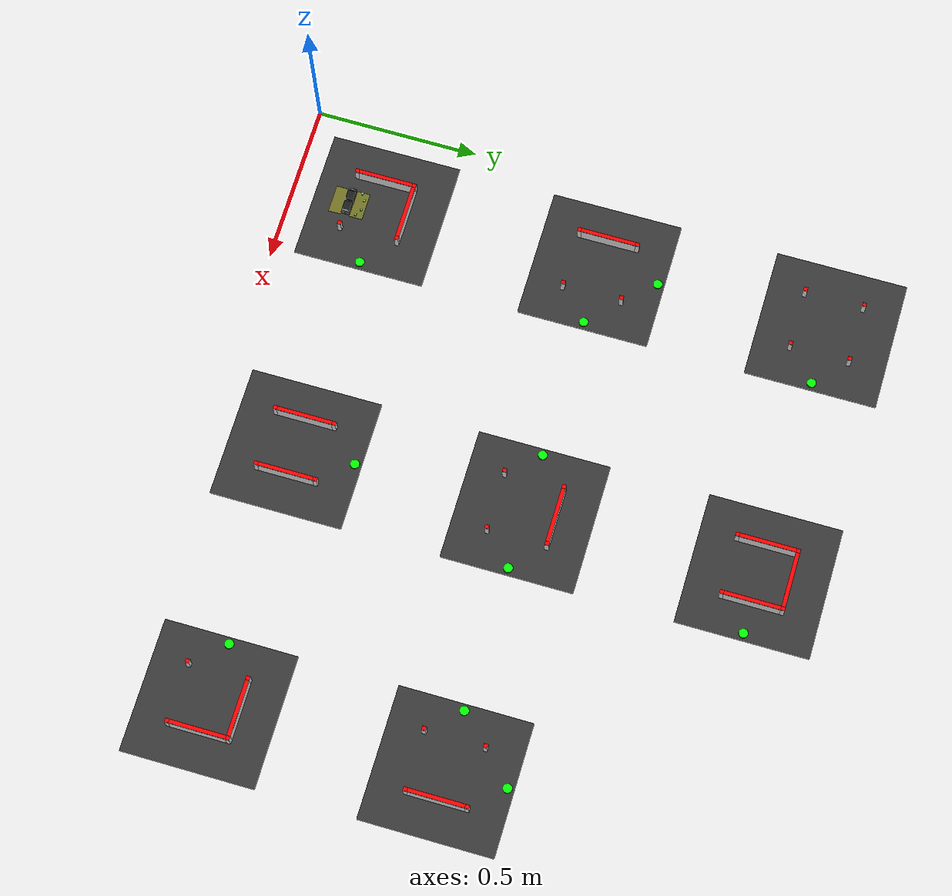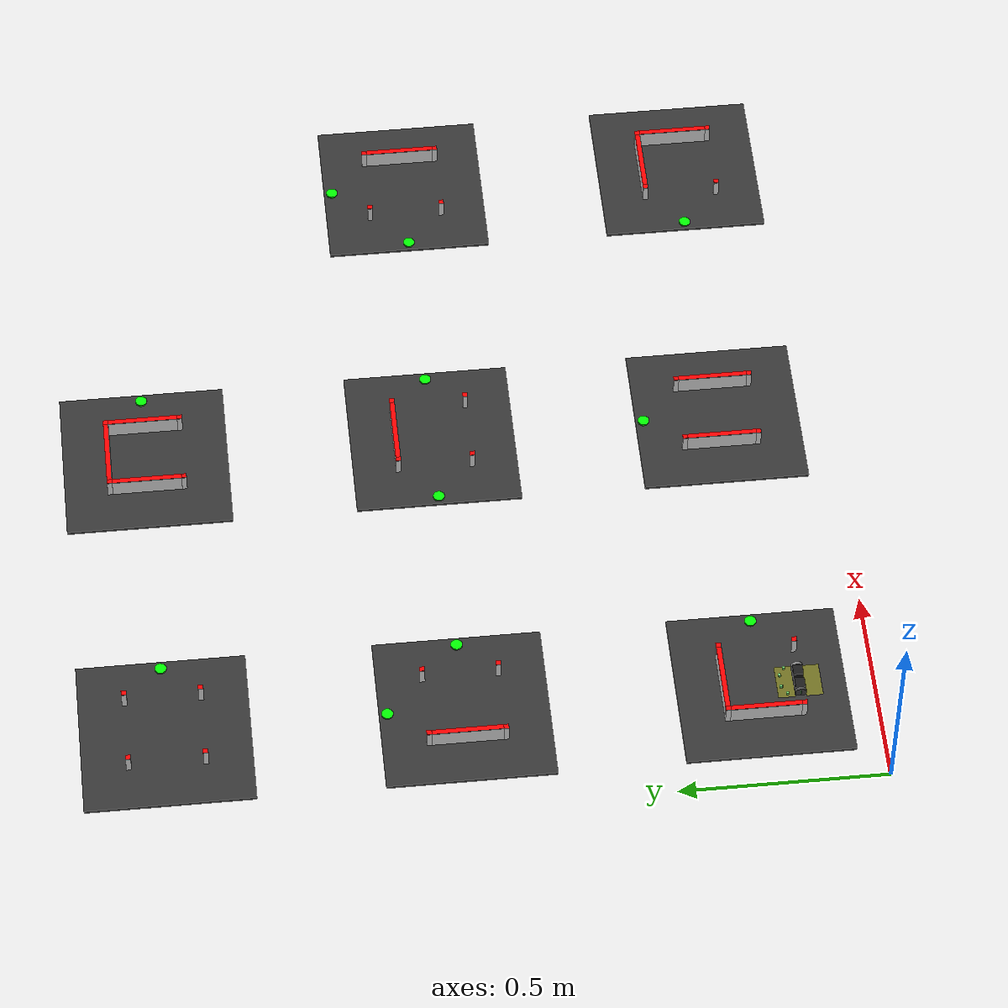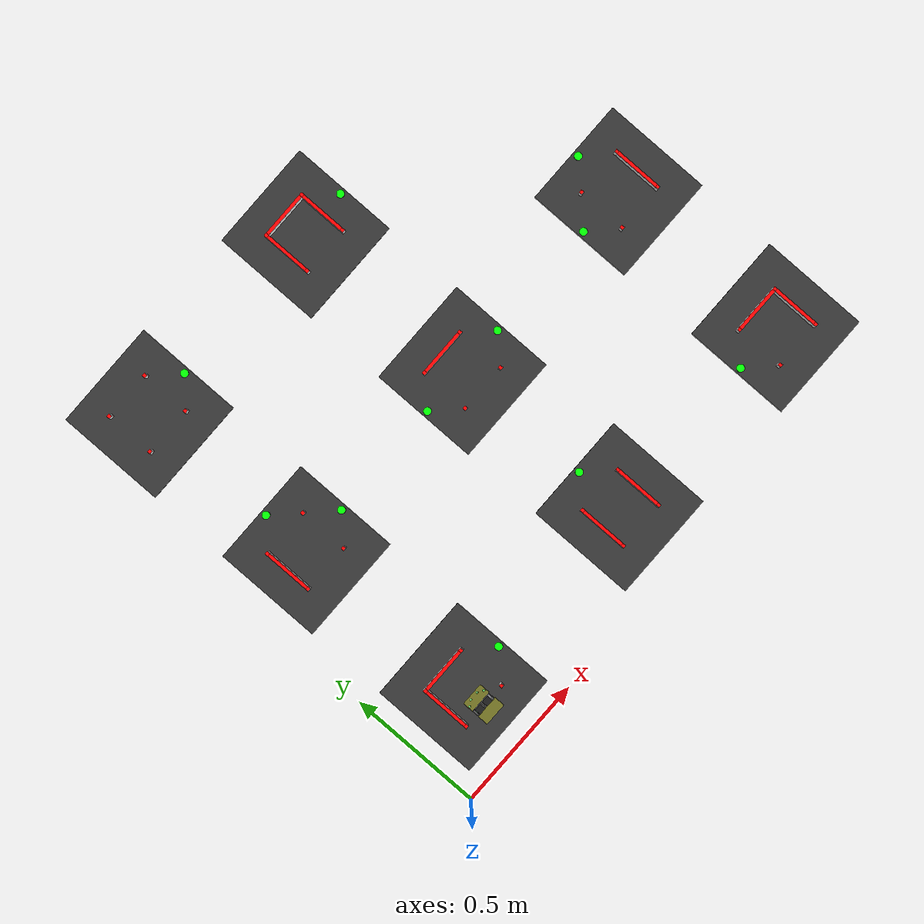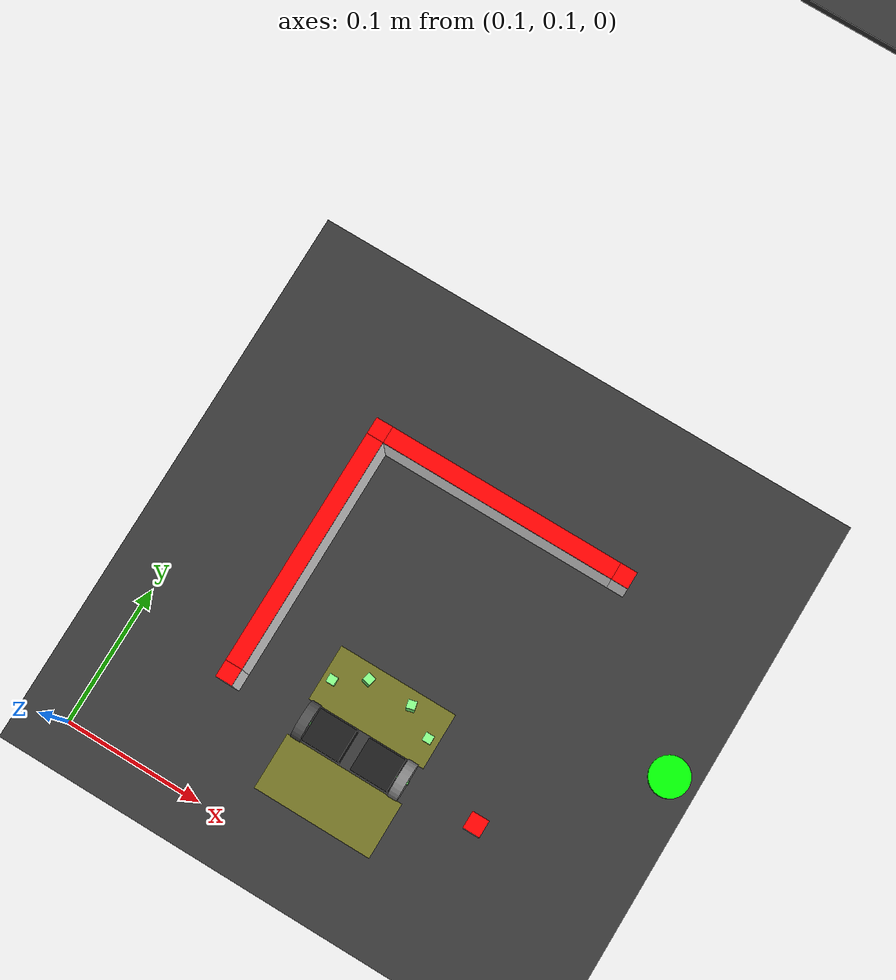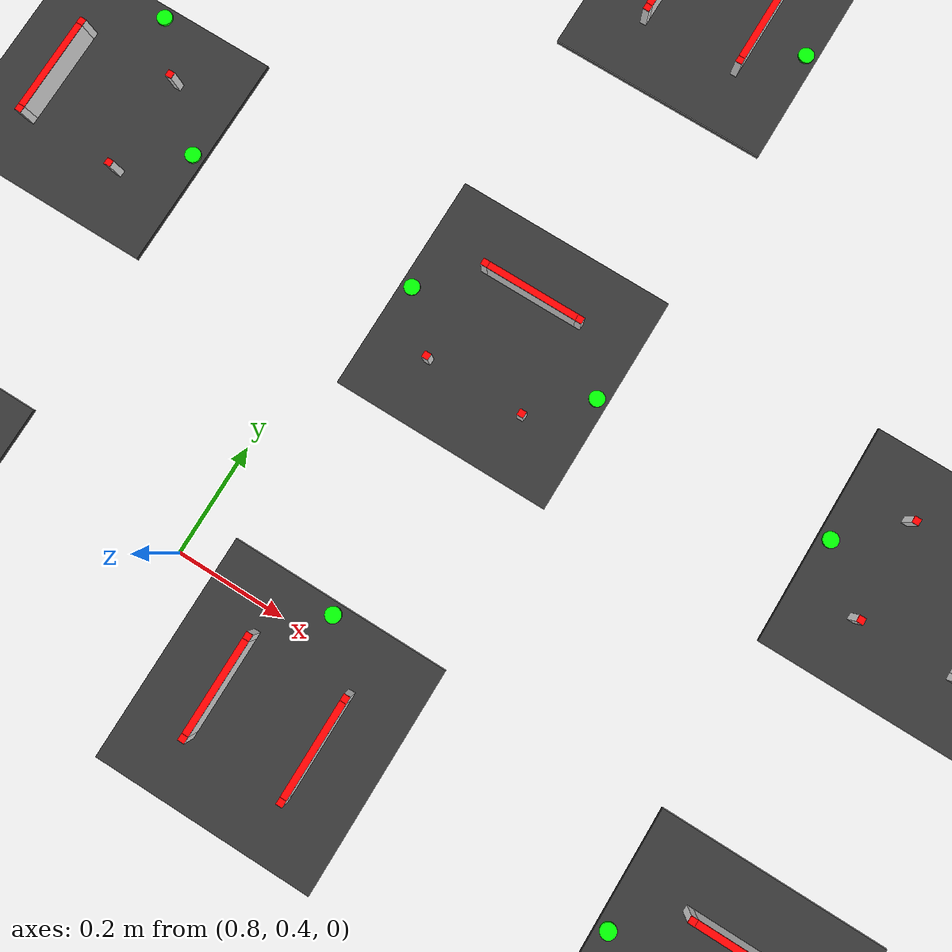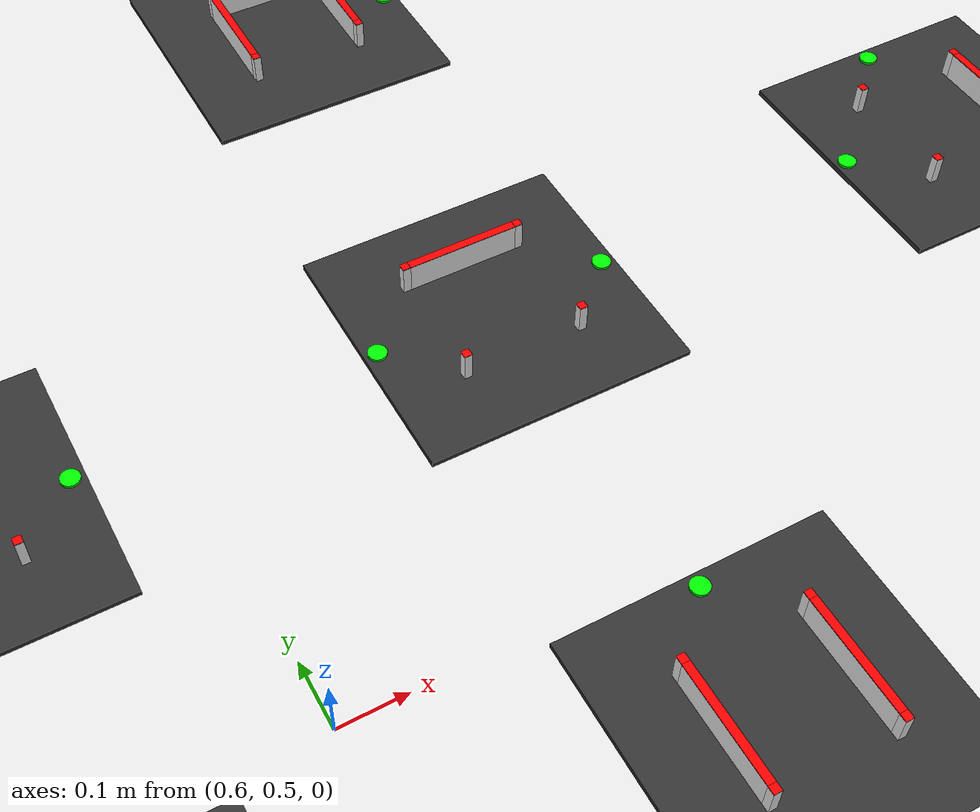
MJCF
<mujoco>
<compiler angle="degree" coordinate="local" inertiafromgeom="true" />
    <option integrator="RK4" timestep="0.001" />
    <visual>
   <quality shadowsize="0" />
</visual>

    <include file="./body_mouse_mas_rand_training.xml"/>
    <include file="./course_mouse_mas_rand_training.xml"/>

</mujoco>

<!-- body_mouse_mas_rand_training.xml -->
<mujoco model="micromouse">
<option>
    </option>
    <worldbody>
        <light diffuse=".5 .5 .5" pos="0 0 10" dir="0 0 -1"/>

         <body pos="0.27 0.18 0.0135" euler="0 0 90">
            <freejoint />
            <body name="torso">
                <geom name="mein_body1" type="box" friction="0.0 0.0 0.0" size="0.05 0.03 0.0008" rgba="0.05 0.4 0.15 1" pos="0 0 0.002" mass="4.65e-3"/>
                <geom name="mein_body_chip1" type="box" friction="0.0 0.0 0.0" size="0.00707 0.00707 0.0008" rgba="0.05 0.4 0.15 1" pos="0.04 0.03 0.002" euler="0 0 45" mass="4.65e-3"/>
                <geom name="mein_body_chip2" type="box" friction="0.0 0.0 0.0" size="0.00707 0.00707 0.0008" rgba="0.05 0.4 0.15 1" pos="0.04 -0.03 0.002" euler="0 0 45" mass="4.65e-3"/>
                <geom name="mein_body_chip3" type="box" friction="0.0 0.0 0.0" size="0.00707 0.00707 0.0008" rgba="0.05 0.4 0.15 1" pos="-0.04 0.03 0.002" euler="0 0 45" mass="4.65e-3"/>
                <geom name="mein_body_chip4" type="box" friction="0.0 0.0 0.0" size="0.00707 0.00707 0.0008" rgba="0.05 0.4 0.15 1" pos="-0.04 -0.03 0.002" euler="0 0 45" mass="4.65e-3"/>
                <geom name="mein_body4" type="box" friction="0.0 0.0 0.0" size="0.013 0.04 0.0008"  rgba="0.05 0.4 0.15 1" pos="-0.027 0 0.002" mass="4.65e-3"/>
                <geom name="mein_body5" type="box" friction="0.0 0.0 0.0" size="0.013 0.04 0.0008"  rgba="0.05 0.4 0.15 1" pos="0.027 0 0.002" mass="4.65e-3"/>
                <!--接触判定領域（この中に入ってるgeomが接触すると，センサ値としてその値を取得できる）-->
                <site name = "hit_box1" type = "box" size = "0.02 0.043 0.00078" pos="0.033 0 0.003" rgba="1 1 0 0.3"/>
                <site name = "hit_box2" type = "box" size = "0.02 0.043 0.00078" pos="-0.033 0 0.003" rgba="1 1 0 0.3"/>
            </body>

            <site name="sensor_left_front" type="box" size="0.003 0.003 0.003" pos="0.031 0.036 0.01" zaxis="1 0 0.01" rgba=".5 1 .5 1"/>
              <!-- zaxisの３つめ　0.1でちょい上向き -->
            <site name="sensor_left_side" type="box" size="0.003 0.003 0.003" pos="0.043 0.016 0.01" zaxis="0.25 1 0" rgba=".5 1 .5 1"/>
            <site name="sensor_right_front" type="box" size="0.003 0.003 0.003" pos="0.031 -0.036 0.01" zaxis="1 0 0.01" rgba=".5 1 .5 1"/>
            <site name="sensor_right_side" type="box" size="0.003 0.003 0.003" pos="0.043 -0.016 0.01" zaxis="0.25 -1 0" rgba=".5 1 .5 1"/>
            <site name="accerometer" type="sphere" size="0.001 0.001" pos="0 0 0.0"/>
            <site name="gyro" type="box" size="0.001 0.001 0.001" pos="0 0 0" />
            <site name="velocimeter" type="box" size="0.001 0.001 0.001" pos="0 0 0"/>

             <body name="left wheel" pos="-0.0 0.036 0.0135" zaxis="0 1 0">
                <joint name="left wheel joint" type="hinge" axis="0 0 1" limited="false" damping='9.6e-5' />
                <geom name="left_wheel" type="cylinder" size="0.0135 0.0035" friction="1.0 0 0"  rgba=".3 .3 0.3 1" mass="5e-3"/>
                <site type="box" size = "0.0012 0.008 0.004" rgba=".5 1 .5 1"/>
            </body>

            <body name="right wheel" pos="-0.0 -0.036 0.0135" zaxis="0 1 0">
                <joint name="right wheel joint" type="hinge" axis="0 0 1" limited="false" damping='9.6e-5' />
                <geom type="cylinder" size="0.0135 0.0035" friction="1.0 0 0" mass="5e-3"/> #直径27mmのタイヤ
                <site type="box" size = "0.0012 0.008 0.004" rgba=".5 1 .5 1"/>
            </body>

            <body name="motorbox1" pos="0 -0.018 0.0135" >
                <geom type="box" size="0.0117 0.0135 0.0117" rgba="0.1 0.1 0.1 1" mass="50e-3"/>
            </body>

            <body name="motorbox2" pos="0 0.018 0.0135">
                <geom type="box" size="0.0117 0.0135 0.0117" rgba="0.1 0.1 0.1 1" mass="50e-3"/>
            </body>

            <!--トラッキングカメラを装着-->
            <camera name="camera_name" mode="track" pos="-0.4 0 0.8" euler="0 -30 -90" fovy="60"/>

        </body>
    </worldbody>

    <actuator>
        <motor name="right" joint="right wheel joint" gear="9.0e-3" ctrllimited="true" ctrlrange="-0.2 0.2"/> ctrlrangeで入力の値の範囲を決められる
        <motor name="left"  joint="left wheel joint"  gear="9.0e-3" ctrllimited="true" ctrlrange="-0.2 0.2"/>
    </actuator>

    <sensor>
        <rangefinder name="LF" site="sensor_left_front" cutoff="0.3"/>
        <rangefinder name="LS" site="sensor_left_side" cutoff="0.3"/>
        <rangefinder name="RF" site="sensor_right_front" cutoff="0.3"/>
        <rangefinder name="RS" site="sensor_right_side" cutoff="0.3"/>
        <touch name = "HB1" site = "hit_box1"/>
        <touch name = "HB2" site = "hit_box2"/>
        <accelerometer name="Accel" site="accerometer"/>
        <gyro name="Gyro" site="gyro" noise="0.0001"/>
        <velocimeter name="Veloci" site="velocimeter"/>
    </sensor>

</mujoco>

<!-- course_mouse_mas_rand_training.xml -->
<mujoco model="maze">
<compiler angle="degree" coordinate="local" inertiafromgeom="true" />
    <option integrator="RK4" />
    <worldbody>
       <!-- ベース板 -->
        <body name="base_plate1" pos="0.27 0.27 0.013">
        <geom type="box" mass="0.1" size="0.20 0.20 0.004" rgba="0.2 0.2 0.2 1" friction="0.0 0.0 0.0"/>
        </body>

        <!-- Column 1-6-->
        <body pos="0.18 0.18 0.037">
            <body pos="0 0 -0.0005">
                <geom type="box" mass="0.01" size="0.006 0.006 0.0245" rgba="1 1 1 1"/>
            </body>
            <!--柱上赤蓋-->
            <body pos="0 0 0.0245">
                <geom type="box" mass="0.01" size="0.006 0.006 0.0005" rgba="1 0 0 1"/>
            </body>
        </body>
        <!-- Column 1-7-->
        <body pos="0.36 0.18 0.037">
            <body pos="0 0 -0.0005">
                <geom type="box" mass="0.01" size="0.006 0.006 0.0245" rgba="1 1 1 1"/>
            </body>
            <!--柱上赤蓋-->
            <body pos="0 0 0.0245">
                <geom type="box" mass="0.01" size="0.006 0.006 0.0005" rgba="1 0 0 1"/>
            </body>
        </body>
        <!-- Column 2-10-->
        <body pos="0.18 0.36 0.037">
            <body pos="0 0 -0.0005">
                <geom type="box" mass="0.01" size="0.006 0.006 0.0245" rgba="1 1 1 1"/>
            </body>
            <!--柱上赤蓋-->
            <body pos="0 0 0.0245">
                <geom type="box" mass="0.01" size="0.006 0.006 0.0005" rgba="1 0 0 1"/>
            </body>
        </body>
        <!-- Column 1-11-->
        <body pos="0.36 0.36 0.037">
            <body pos="0 0 -0.0005">
                <geom type="box" mass="0.01" size="0.006 0.006 0.0245" rgba="1 1 1 1"/>
            </body>
            <!--柱上赤蓋-->
            <body pos="0 0 0.0245">
                <geom type="box" mass="0.01" size="0.006 0.006 0.0005" rgba="1 0 0 1"/>
            </body>
        </body>

        <!--ベース板2-->
        <body name="base_plate2" pos="1.07 0.27 0.013">
        <geom type="box" mass="0.1" size="0.2 0.2 0.004" rgba="0.2 0.2 0.2 1" friction="0.0 0.0 0.0"/>
        </body>

        <!-- Column 2-6-->
        <body pos="0.98 0.18 0.037">
            <body pos="0 0 -0.0005">
                <geom type="box" mass="0.01" size="0.006 0.006 0.0245" rgba="1 1 1 1"/>
            </body>
            <!--柱上赤蓋-->
            <body pos="0 0 0.0245">
                <geom type="box" mass="0.01" size="0.006 0.006 0.0005" rgba="1 0 0 1"/>
            </body>
        </body>
        <!-- Column 2-7-->
        <body pos="1.16 0.18 0.037">
            <body pos="0 0 -0.0005">
                <geom type="box" mass="0.01" size="0.006 0.006 0.0245" rgba="1 1 1 1"/>
            </body>
            <!--柱上赤蓋-->
            <body pos="0 0 0.0245">
                <geom type="box" mass="0.01" size="0.006 0.006 0.0005" rgba="1 0 0 1"/>
            </body>
        </body>
        <!-- Column 2-10-->
        <body pos="0.98 0.36 0.037">
            <body pos="0 0 -0.0005">
                <geom type="box" mass="0.01" size="0.006 0.006 0.0245" rgba="1 1 1 1"/>
            </body>
            <!--柱上赤蓋-->
            <body pos="0 0 0.0245">
                <geom type="box" mass="0.01" size="0.006 0.006 0.0005" rgba="1 0 0 1"/>
            </body>
        </body>
        <!-- Column 2-11-->
        <body pos="1.16 0.36 0.037">
            <body pos="0 0 -0.0005">
                <geom type="box" mass="0.01" size="0.006 0.006 0.0245" rgba="1 1 1 1"/>
            </body>
            <!--柱上赤蓋-->
            <body pos="0 0 0.0245">
                <geom type="box" mass="0.01" size="0.006 0.006 0.0005" rgba="1 0 0 1"/>
            </body>
        </body>

        <!--ベース板3-->
        <body name="base_plate3" pos="1.87 0.27 0.013">
        <geom type="box" mass="0.1" size="0.2 0.2 0.004" rgba="0.2 0.2 0.2 1" friction="0.0 0.0 0.0"/>
        </body>

        <!-- Column 3-6-->
        <body pos="1.78 0.18 0.037">
            <body pos="0.0 0 -0.0005">
                <geom type="box" mass="0.01" size="0.006 0.006 0.0245" rgba="1 1 1 1"/>
            </body>
            <!--柱上赤蓋-->
            <body pos="0.0 0 0.0245">
                <geom type="box" mass="0.01" size="0.006 0.006 0.0005" rgba="1 0 0 1"/>
            </body>
        </body>
        <!-- Column 3-7-->
        <body pos="1.96 0.18 0.037">
            <body pos="0.0 0 -0.0005">
                <geom type="box" mass="0.01" size="0.006 0.006 0.0245" rgba="1 1 1 1"/>
            </body>
            <!--柱上赤蓋-->
            <body pos="0.0 0 0.0245">
                <geom type="box" mass="0.01" size="0.006 0.006 0.0005" rgba="1 0 0 1"/>
            </body>
        </body>
        <!-- Column 3-10-->
        <body pos="1.78 0.36 0.037">
            <body pos="0.0 0 -0.0005">
                <geom type="box" mass="0.01" size="0.006 0.006 0.0245" rgba="1 1 1 1"/>
            </body>
            <!--柱上赤蓋-->
            <body pos="0.0 0 0.0245">
                <geom type="box" mass="0.01" size="0.006 0.006 0.0005" rgba="1 0 0 1"/>
            </body>
        </body>
        <!-- Column 3-11-->
        <body pos="1.96 0.36 0.037">
            <body pos="0.0 0 -0.0005">
                <geom type="box" mass="0.01" size="0.006 0.006 0.0245" rgba="1 1 1 1"/>
            </body>
            <!--柱上赤蓋-->
            <body pos="0.0 0 0.0245">
                <geom type="box" mass="0.01" size="0.006 0.006 0.0005" rgba="1 0 0 1"/>
            </body>
        </body>

        <!-- #############################Y軸方向に増やす###############################-->
        <!-- #############################Y軸方向に増やす###############################-->
        <!-- #############################Y軸方向に増やす###############################-->
        <!-- #############################Y軸方向に増やす###############################-->
        <!-- #############################Y軸方向に増やす###############################-->
        <!-- #############################Y軸方向に増やす###############################-->
        <!-- #############################Y軸方向に増やす###############################-->
        <!-- #############################Y軸方向に増やす###############################-->

        <!--ベース板4-->
        <body name="base_plate4" pos="0.27 0.97 0.013">
        <geom type="box" mass="0.1" size="0.2 0.2 0.004" rgba="0.2 0.2 0.2 1" friction="0.0 0.0 0.0"/>
        </body>

        <!-- Column 4-6-->
        <body pos="0.18 0.88 0.037">
            <body pos="0 0 -0.0005">
                <geom type="box" mass="0.01" size="0.006 0.006 0.0245" rgba="1 1 1 1"/>
            </body>
            <!--柱上赤蓋-->
            <body pos="0 0 0.0245">
                <geom type="box" mass="0.01" size="0.006 0.006 0.0005" rgba="1 0 0 1"/>
            </body>
        </body>
        <!-- Column 4-7-->
        <body pos="0.36 0.88 0.037">
            <body pos="0 0 -0.0005">
                <geom type="box" mass="0.01" size="0.006 0.006 0.0245" rgba="1 1 1 1"/>
            </body>
            <!--柱上赤蓋-->
            <body pos="0 0 0.0245">
                <geom type="box" mass="0.01" size="0.006 0.006 0.0005" rgba="1 0 0 1"/>
            </body>
        </body>
        <!-- Column 4-10-->
        <body pos="0.18 1.06 0.037">
            <body pos="0 0 -0.0005">
                <geom type="box" mass="0.01" size="0.006 0.006 0.0245" rgba="1 1 1 1"/>
            </body>
            <!--柱上赤蓋-->
            <body pos="0 0 0.0245">
                <geom type="box" mass="0.01" size="0.006 0.006 0.0005" rgba="1 0 0 1"/>
            </body>
        </body>
        <!-- Column 4-11-->
        <body pos="0.36 1.06 0.037">
            <body pos="0 0 -0.0005">
                <geom type="box" mass="0.01" size="0.006 0.006 0.0245" rgba="1 1 1 1"/>
            </body>
            <!--柱上赤蓋-->
            <body pos="0 0 0.0245">
                <geom type="box" mass="0.01" size="0.006 0.006 0.0005" rgba="1 0 0 1"/>
            </body>
        </body>

        <!--ベース板5-->
        <body name="base_plate5" pos="1.07 0.97 0.013">
        <geom type="box" mass="0.1" size="0.2 0.2 0.004" rgba="0.2 0.2 0.2 1" friction="0.0 0.0 0.0"/>
        </body>

        <!-- Column 5-6-->
        <body pos="0.98 0.88 0.037">
            <body pos="0 0 -0.0005">
                <geom type="box" mass="0.01" size="0.006 0.006 0.0245" rgba="1 1 1 1"/>
            </body>
            <!--柱上赤蓋-->
            <body pos="0 0 0.0245">
                <geom type="box" mass="0.01" size="0.006 0.006 0.0005" rgba="1 0 0 1"/>
            </body>
        </body>
        <!-- Column 5-7-->
        <body pos="1.16 0.88 0.037">
            <body pos="0 0 -0.0005">
                <geom type="box" mass="0.01" size="0.006 0.006 0.0245" rgba="1 1 1 1"/>
            </body>
            <!--柱上赤蓋-->
            <body pos="0 0 0.0245">
                <geom type="box" mass="0.01" size="0.006 0.006 0.0005" rgba="1 0 0 1"/>
            </body>
        </body>
        <!-- Column 5-10-->
        <body pos="0.98 1.06 0.037">
            <body pos="0 0 -0.0005">
                <geom type="box" mass="0.01" size="0.006 0.006 0.0245" rgba="1 1 1 1"/>
            </body>
            <!--柱上赤蓋-->
            <body pos="0 0 0.0245">
                <geom type="box" mass="0.01" size="0.006 0.006 0.0005" rgba="1 0 0 1"/>
            </body>
        </body>
        <!-- Column 5-11-->
        <body pos="1.16 1.06 0.037">
            <body pos="0 0 -0.0005">
                <geom type="box" mass="0.01" size="0.006 0.006 0.0245" rgba="1 1 1 1"/>
            </body>
            <!--柱上赤蓋-->
            <body pos="0 0 0.0245">
                <geom type="box" mass="0.01" size="0.006 0.006 0.0005" rgba="1 0 0 1"/>
            </body>
        </body>

        <!--ベース板6-->
        <body name="base_plate6" pos="1.87 0.97 0.013">
        <geom type="box" mass="0.1" size="0.2 0.2 0.004" rgba="0.2 0.2 0.2 1" friction="0.0 0.0 0.0"/>
        </body>

        <!-- Column 6-6-->
        <body pos="1.78 0.88 0.037">
            <body pos="0 0 -0.0005">
                <geom type="box" mass="0.01" size="0.006 0.006 0.0245" rgba="1 1 1 1"/>
            </body>
            <!--柱上赤蓋-->
            <body pos="0 0 0.0245">
                <geom type="box" mass="0.01" size="0.006 0.006 0.0005" rgba="1 0 0 1"/>
            </body>
        </body>
        <!-- Column 6-7-->
        <body pos="1.96 0.88 0.037">
            <body pos="0 0 -0.0005">
                <geom type="box" mass="0.01" size="0.006 0.006 0.0245" rgba="1 1 1 1"/>
            </body>
            <!--柱上赤蓋-->
            <body pos="0 0 0.0245">
                <geom type="box" mass="0.01" size="0.006 0.006 0.0005" rgba="1 0 0 1"/>
            </body>
        </body>
        <!-- Column 6-10-->
        <body pos="1.78 1.06 0.037">
            <body pos="0 0 -0.0005">
                <geom type="box" mass="0.01" size="0.006 0.006 0.0245" rgba="1 1 1 1"/>
            </body>
            <!--柱上赤蓋-->
            <body pos="0 0 0.0245">
                <geom type="box" mass="0.01" size="0.006 0.006 0.0005" rgba="1 0 0 1"/>
            </body>
        </body>
        <!-- Column 6-11-->
        <body pos="1.96 1.06 0.037">
            <body pos="0 0 -0.0005">
                <geom type="box" mass="0.01" size="0.006 0.006 0.0245" rgba="1 1 1 1"/>
            </body>
            <!--柱上赤蓋-->
            <body pos="0 0 0.0245">
                <geom type="box" mass="0.01" size="0.006 0.006 0.0005" rgba="1 0 0 1"/>
            </body>
        </body>

        <!-- #############################3列目###############################-->

        <!--ベース板7-->
        <body name="base_plate7" pos="0.27 1.67 0.013">
        <geom type="box" mass="0.1" size="0.2 0.2 0.004" rgba="0.2 0.2 0.2 1" friction="0.0 0.0 0.0"/>
        </body>

        <!-- Column 7-6-->
        <body pos="0.18 1.58 0.037">
            <body pos="0 0 -0.0005">
                <geom type="box" mass="0.01" size="0.006 0.006 0.0245" rgba="1 1 1 1"/>
            </body>
            <!--柱上赤蓋-->
            <body pos="0 0 0.0245">
                <geom type="box" mass="0.01" size="0.006 0.006 0.0005" rgba="1 0 0 1"/>
            </body>
        </body>
        <!-- Column 7-7-->
        <body pos="0.36 1.58 0.037">
            <body pos="0 0 -0.0005">
                <geom type="box" mass="0.01" size="0.006 0.006 0.0245" rgba="1 1 1 1"/>
            </body>
            <!--柱上赤蓋-->
            <body pos="0 0 0.0245">
                <geom type="box" mass="0.01" size="0.006 0.006 0.0005" rgba="1 0 0 1"/>
            </body>
        </body>
        <!-- Column 7-10-->
        <body pos="0.18 1.76 0.037">
            <body pos="0 0 -0.0005">
                <geom type="box" mass="0.01" size="0.006 0.006 0.0245" rgba="1 1 1 1"/>
            </body>
            <!--柱上赤蓋-->
            <body pos="0 0 0.0245">
                <geom type="box" mass="0.01" size="0.006 0.006 0.0005" rgba="1 0 0 1"/>
            </body>
        </body>
        <!-- Column 7-11-->
        <body pos="0.36 1.76 0.037">
            <body pos="0 0 -0.0005">
                <geom type="box" mass="0.01" size="0.006 0.006 0.0245" rgba="1 1 1 1"/>
            </body>
            <!--柱上赤蓋-->
            <body pos="0 0 0.0245">
                <geom type="box" mass="0.01" size="0.006 0.006 0.0005" rgba="1 0 0 1"/>
            </body>
        </body>

        <!--ベース板8-->
        <body name="base_plate8" pos="1.07 1.67 0.013">
        <geom type="box" mass="0.1" size="0.2 0.2 0.004" rgba="0.2 0.2 0.2 1" friction="0.0 0.0 0.0"/>
        </body>

        <!-- Column 8-6-->
        <body pos="0.98 1.58 0.037">
            <body pos="0 0 -0.0005">
                <geom type="box" mass="0.01" size="0.006 0.006 0.0245" rgba="1 1 1 1"/>
            </body>
            <!--柱上赤蓋-->
            <body pos="0 0 0.0245">
                <geom type="box" mass="0.01" size="0.006 0.006 0.0005" rgba="1 0 0 1"/>
            </body>
        </body>
        <!-- Column 8-7-->
        <body pos="1.16 1.58 0.037">
            <body pos="0 0 -0.0005">
                <geom type="box" mass="0.01" size="0.006 0.006 0.0245" rgba="1 1 1 1"/>
            </body>
            <!--柱上赤蓋-->
            <body pos="0 0 0.0245">
                <geom type="box" mass="0.01" size="0.006 0.006 0.0005" rgba="1 0 0 1"/>
            </body>
        </body>
        <!-- Column 8-10-->
        <body pos="0.98 1.76 0.037">
            <body pos="0 0 -0.0005">
                <geom type="box" mass="0.01" size="0.006 0.006 0.0245" rgba="1 1 1 1"/>
            </body>
            <!--柱上赤蓋-->
            <body pos="0 0 0.0245">
                <geom type="box" mass="0.01" size="0.006 0.006 0.0005" rgba="1 0 0 1"/>
            </body>
        </body>
        <!-- Column 8-11-->
        <body pos="1.16 1.76 0.037">
            <body pos="0 0 -0.0005">
                <geom type="box" mass="0.01" size="0.006 0.006 0.0245" rgba="1 1 1 1"/>
            </body>
            <!--柱上赤蓋-->
            <body pos="0 0 0.0245">
                <geom type="box" mass="0.01" size="0.006 0.006 0.0005" rgba="1 0 0 1"/>
            </body>
        </body>

        <!-- #############################基本コースここまで###############################-->
        <!-- #############################基本コースここまで###############################-->
        <!-- #############################基本コースここまで###############################-->
        <!-- #############################基本コースここまで###############################-->

        <!-- #############################ランダム出現用壁の定義###############################-->
        <!-- #############################ランダム出現用壁の定義###############################-->
        <!-- #############################ランダム出現用壁の定義###############################-->
        <!-- #############################ランダム出現用壁の定義###############################-->

        <!-- #############################コース1###############################-->
        <!-- #############################コース1###############################-->
        <!-- Wall 1-左-->
        <body pos="0.18 0.27 0.037" name="1-forward_wall">
            <body pos="0 0 -0.0005">
                <geom type="box" mass="0.01" size="0.006 0.084 0.0245" rgba="1 1 1 1"/>
            </body>
            <!--壁上赤蓋-->
            <body pos="0 0 0.0245">
                <geom type="box" mass="0.01" size="0.006 0.084 0.0005" rgba="1 0 0 1"/>
            </body>
        </body>
        <!-- Wall 1-前-->
        <body pos="0.27 0.36 0.037" name="1-left_wall">
            <body pos="0 0 -0.0005">
                <geom type="box" mass="0.01" size="0.084 0.006 0.0245" rgba="1 1 1 1"/>
            </body>
            <!--壁上赤蓋-->
            <body pos="0 0 0.0245">
                <geom type="box" mass="0.01" size="0.084 0.006 0.0005" rgba="1 0 0 1"/>
            </body>
        </body>

        <!-- ###ゴール### -->
        <geom type="cylinder" name="goal_1" pos="0.45 0.27 0.015" size="0.014 0.006" rgba="0 1 0 1"/>
        <site type="cylinder" name="goal_1" pos="0.45 0.27 0.015" size="0.014 0.006" rgba="0 1 0 1"/>

    <!-- #############################コース2###############################-->
<!-- #############################コース2###############################-->

<!-- Wall 2-左-->
<body pos="0.98 0.27 0.037" name="2-forward_wall">
    <!-- 子bodyは変更なし -->
    <body pos="0 0 -0.0005">
        <geom type="box" mass="0.01" size="0.006 0.084 0.0245" rgba="1 1 1 1"/>
    </body>
    <!--壁上赤蓋-->
    <body pos="0 0 0.0245">
        <geom type="box" mass="0.01" size="0.006 0.084 0.0005" rgba="1 0 0 1"/>
    </body>
</body>

<!-- Wall 2-右-->
<body pos="1.16 0.27 0.037" name="2-right_wall">
    <!-- 子bodyは変更なし -->
    <body pos="0 0 -0.0005">
        <geom type="box" mass="0.01" size="0.006 0.084 0.0245" rgba="1 1 1 1"/>
    </body>
    <!--壁上赤蓋-->
    <body pos="0 0 0.0245">
        <geom type="box" mass="0.01" size="0.006 0.084 0.0005" rgba="1 0 0 1"/>
    </body>
</body>

<!-- ###ゴール### -->
<geom type="cylinder" name="goal_2" pos="1.07 0.45 0.015" size="0.014 0.006" rgba="0 1 0 1"/>
<site type="cylinder" name="goal_2" pos="1.07 0.45 0.015" size="0.014 0.006" rgba="0 1 0 1"/>

    <!-- #############################コース3###############################-->
<!-- #############################コース3###############################-->

<!-- Wall 3-前-->
<body pos="1.87 0.36 0.037" name="3-left_wall">
    <!-- 子bodyは変更なし -->
    <body pos="0 0 -0.0005">
        <geom type="box" mass="0.01" size="0.084 0.006 0.0245" rgba="1 1 1 1"/>
    </body>
    <!--壁上赤蓋-->
    <body pos="0 0 0.0245">
        <geom type="box" mass="0.01" size="0.084 0.006 0.0005" rgba="1 0 0 1"/>
    </body>
</body>

<!-- Wall 3-右-->
<body pos="1.96 0.27 0.037" name="3-right_wall">
    <!-- 子bodyは変更なし -->
    <body pos="0 0 -0.0005">
        <geom type="box" mass="0.01" size="0.006 0.084 0.0245" rgba="1 1 1 1"/>
    </body>
    <!--壁上赤蓋-->
    <body pos="0 0 0.0245">
        <geom type="box" mass="0.01" size="0.006 0.084 0.0005" rgba="1 0 0 1"/>
    </body>
</body>

<!-- ###ゴール### -->
<geom type="cylinder" name="goal_3" pos="1.69 0.27 0.015" size="0.014 0.006" rgba="0 1 0 1"/>
<site type="cylinder" name="goal_3" pos="1.69 0.27 0.015" size="0.014 0.006" rgba="0 1 0 1"/>

        <!-- #############################コース4###############################-->
        <!-- #############################コース4###############################-->
<!-- #############################コース4###############################-->

<!-- Wall 4-左-->
<body pos="0.18 0.97 0.037" name="4-forward_wall">
    <!-- 子bodyは変更なし -->
    <body pos="0 0 -0.0005">
        <geom type="box" mass="0.01" size="0.006 0.084 0.0245" rgba="1 1 1 1"/>
    </body>
    <!--壁上赤蓋-->
    <body pos="0 0 0.0245">
        <geom type="box" mass="0.01" size="0.006 0.084 0.0005" rgba="1 0 0 1"/>
    </body>
</body>

<!-- ###ゴール### -->
<geom type="cylinder" name="goal_4" pos="0.45 0.97 0.015" size="0.014 0.006" rgba="0 1 0 1"/>
<site type="cylinder" name="goal_4" pos="0.45 0.97 0.015" size="0.014 0.006" rgba="0 1 0 1"/>
<geom type="cylinder" name="goal_4-2" pos="0.27 1.15 0.015" size="0.014 0.006" rgba="0 1 0 1"/>
<site type="cylinder" name="goal_4-2" pos="0.27 1.15 0.015" size="0.014 0.006" rgba="0 1 0 1"/>

<!-- #############################コース5###############################-->
<!-- #############################コース5###############################-->

<!-- Wall 5-前-->
<body pos="1.07 1.06 0.037" name="5-left_wall">
    <!-- 子bodyは変更なし -->
    <body pos="0 0 -0.0005">
        <geom type="box" mass="0.01" size="0.084 0.006 0.0245" rgba="1 1 1 1"/>
    </body>
    <!--壁上赤蓋-->
    <body pos="0 0 0.0245">
        <geom type="box" mass="0.01" size="0.084 0.006 0.0005" rgba="1 0 0 1"/>
    </body>
</body>

<!-- ###ゴール### -->
<geom type="cylinder" name="goal_5" pos="1.25 0.97 0.015" size="0.014 0.006" rgba="0 1 0 1"/>
<site type="cylinder" name="goal_5" pos="1.25 0.97 0.015" size="0.014 0.006" rgba="0 1 0 1"/>
<geom type="cylinder" name="goal_5-2" pos="0.89 0.97 0.015" size="0.014 0.006" rgba="0 1 0 1"/>
<site type="cylinder" name="goal_5-2" pos="0.89 0.97 0.015" size="0.014 0.006" rgba="0 1 0 1"/>

<!-- #############################コース6###############################-->
<!-- #############################コース6###############################-->

<!-- Wall 6-右-->
<body pos="1.96 0.97 0.037" name="6-right_wall">
    <!-- 子bodyは変更なし -->
    <body pos="0 0 -0.0005">
        <geom type="box" mass="0.01" size="0.006 0.084 0.0245" rgba="1 1 1 1"/>
    </body>
    <!--壁上赤蓋-->
    <body pos="0 0 0.0245">
        <geom type="box" mass="0.01" size="0.006 0.084 0.0005" rgba="1 0 0 1"/>
    </body>
</body>

<!-- ###ゴール### -->
<geom type="cylinder" name="goal_6" pos="1.69 0.97 0.015" size="0.014 0.006" rgba="0 1 0 1"/>
<site type="cylinder" name="goal_6" pos="1.69 0.97 0.015" size="0.014 0.006" rgba="0 1 0 1"/>
<geom type="cylinder" name="goal_6-2" pos="1.87 1.15 0.015" size="0.014 0.006" rgba="0 1 0 1"/>
<site type="cylinder" name="goal_6-2" pos="1.87 1.15 0.015" size="0.014 0.006" rgba="0 1 0 1"/>

<!-- #############################コース7###############################-->
<!-- #############################コース7###############################-->

<!-- ###ゴール### -->
<geom type="cylinder" name="goal_7" pos="0.45 1.67 0.015" size="0.014 0.006" rgba="0 1 0 1"/>
<site type="cylinder" name="goal_7" pos="0.45 1.67 0.015" size="0.014 0.006" rgba="0 1 0 1"/>

<!-- #############################コース8###############################-->
<!-- #############################コース8###############################-->

<!-- Wall 8-左-->
<body pos="0.98 1.67 0.037" name="8-forward_wall">
    <!-- 子bodyは変更なし -->
    <body pos="0 0 -0.0005">
        <geom type="box" mass="0.01" size="0.006 0.084 0.0245" rgba="1 1 1 1"/>
    </body>
    <!--壁上赤蓋-->
    <body pos="0 0 0.0245">
        <geom type="box" mass="0.01" size="0.006 0.084 0.0005" rgba="1 0 0 1"/>
    </body>
</body>

<!-- Wall 8-前-->
<body pos="1.07 1.76 0.037" name="8-left_wall">
    <!-- 子bodyは変更なし -->
    <body pos="0 0 -0.0005">
        <geom type="box" mass="0.01" size="0.084 0.006 0.0245" rgba="1 1 1 1"/>
    </body>
    <!--壁上赤蓋-->
    <body pos="0 0 0.0245">
        <geom type="box" mass="0.01" size="0.084 0.006 0.0005" rgba="1 0 0 1"/>
    </body>
</body>

<!-- Wall 8-右-->
<body pos="1.16 1.67 0.037" name="8-right_wall">
    <!-- 子bodyは変更なし -->
    <body pos="0 0 -0.0005">
        <geom type="box" mass="0.01" size="0.006 0.084 0.0245" rgba="1 1 1 1"/>
    </body>
    <!--壁上赤蓋-->
    <body pos="0 0 0.0245">
        <geom type="box" mass="0.01" size="0.006 0.084 0.0005" rgba="1 0 0 1"/>
    </body>
</body>

<!-- ###ゴール### -->
<geom type="cylinder" name="goal_8" pos="1.25 1.67 0.015" size="0.014 0.006" rgba="0 1 0 1"/>
<site type="cylinder" name="goal_8" pos="1.25 1.67 0.015" size="0.014 0.006" rgba="0 1 0 1"/>

    </worldbody>
    <sensor>
        <touch name = "goal_1" site = "goal_1"/>
        <touch name = "goal_2" site = "goal_2"/>
        <touch name = "goal_3" site = "goal_3"/>
        <touch name = "goal_4" site = "goal_4"/>
        <touch name = "goal_5" site = "goal_5"/>
        <touch name = "goal_6" site = "goal_6"/>
        <touch name = "goal_7" site = "goal_7"/>
        <touch name = "goal_8" site = "goal_8"/>
    </sensor>
</mujoco>
